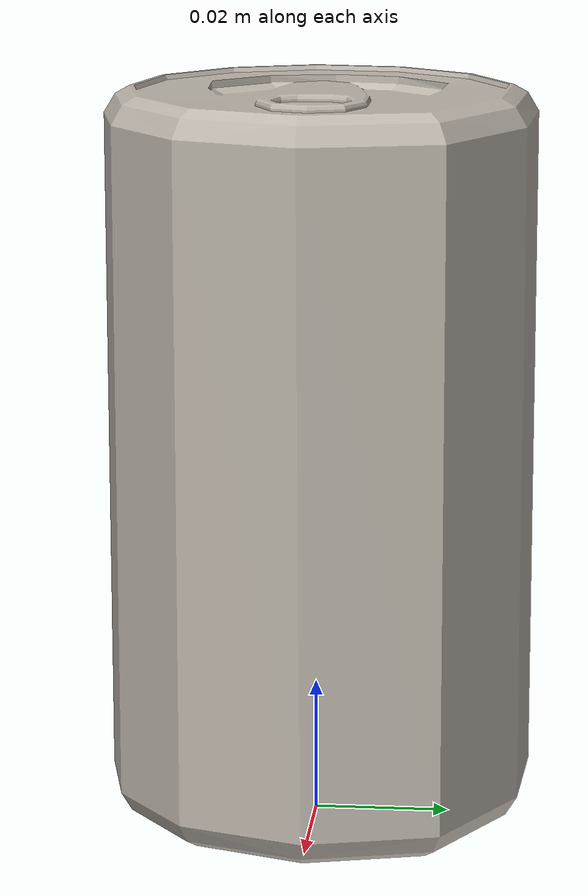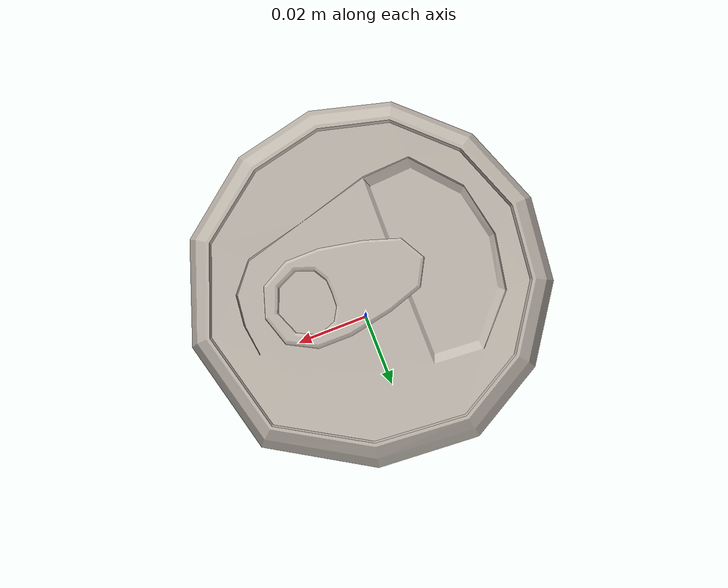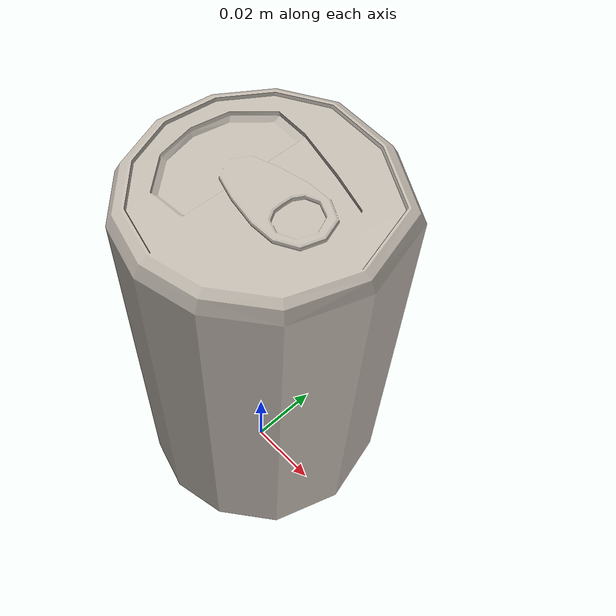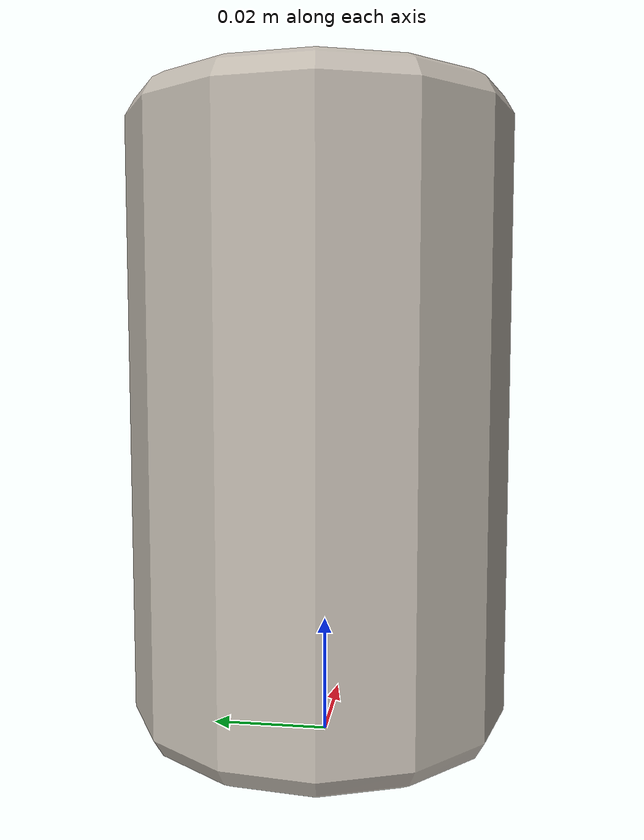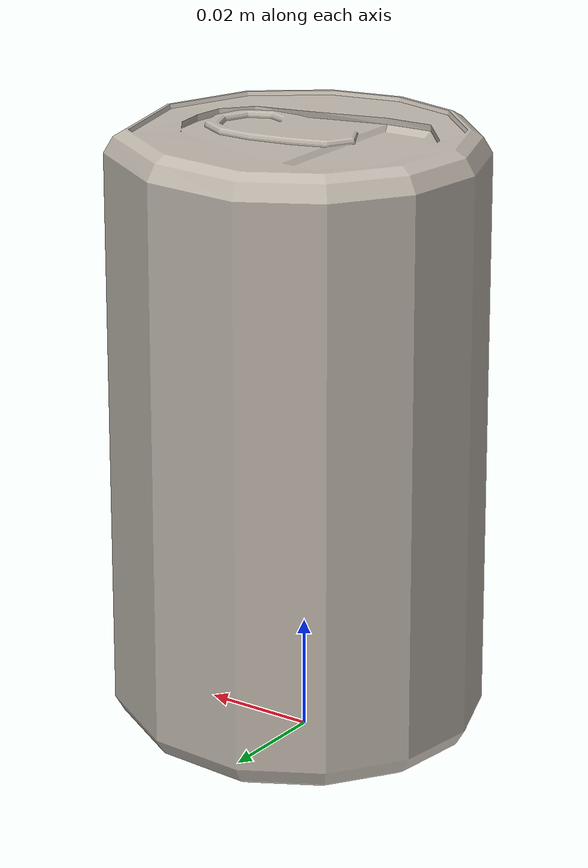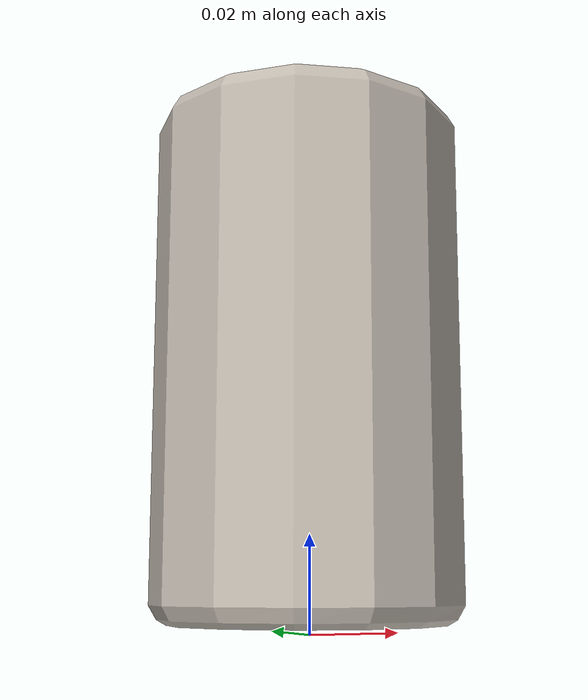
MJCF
<?xml version="1.0" encoding="utf-8"?>
<mujoco model="soda">
  <compiler angle="radian" meshdir="assets" texturedir="assets" autolimits="true"/>
  <asset>
    <mesh file="soda.obj"/>
    <texture type="2d" name="soda" file="soda.png"/>
    <material name="soda" specular="0.2" shininess="0.2" texture="soda"/>
  </asset>
  <default>
    <default class="soda">
      <geom type="mesh" mass="0.1" solimp="0.95 0.98 0.001" solref="0.004 1"/>
      <default class="balance">
        <geom group="3" type="sphere" mass="0.1" size="0.01" pos="0 0 -0.02" contype="0" conaffinity="0"/>
      </default>
    </default>
  </default>
  <worldbody>
    <body name="soda" childclass="soda">
      <geom name="soda" mesh="soda" material="soda" euler="1.5708 0 0"/>
      <geom class="balance"/>
    </body>
  </worldbody>
</mujoco>
